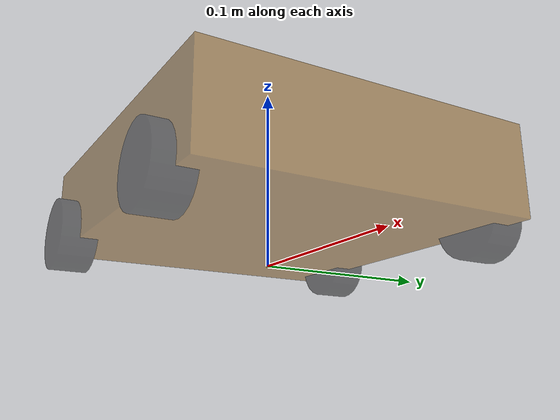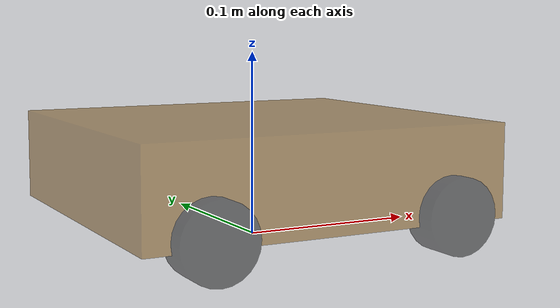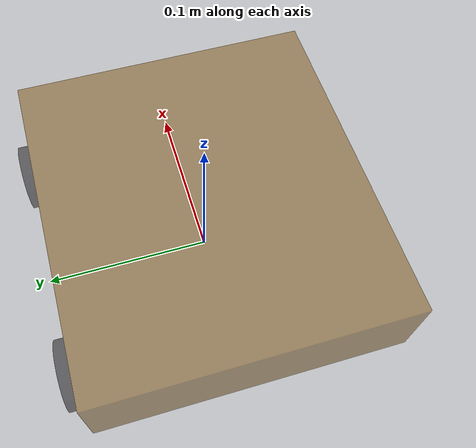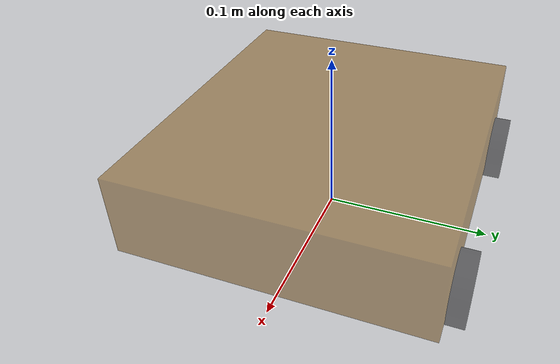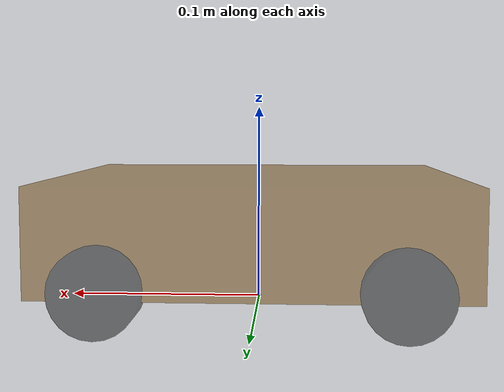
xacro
<robot xmlns:xacro="http://www.ros.org/wiki/xacro" name="mycar">
  <xacro:include filename="chassis.xacro" />
  <xacro:chassis foobar="simple" />

  <!-- ros_control plugin -->
  <gazebo>
    <plugin name="rm_ros_control" filename="librm_robot_hw_sim.so">
      <robotNamespace>/</robotNamespace>
      <robotSimType>rm_gazebo/RmRobotHWSim</robotSimType>
    </plugin>
  </gazebo>

</robot>

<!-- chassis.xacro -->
<robot name="mycar"
    xmlns:xacro="http://www.ros.org/wiki/xacro">
    <xacro:include filename="inertial.xacro" />
    <xacro:include filename="wheel.xacro" />
    <xacro:property name="base_length" value="0.2" />
    <xacro:property name="base_width" value="0.18" />
    <xacro:property name="base_height" value="0.05" />
    <xacro:property name="base_mass" value="2" />
    <xacro:property name="lidi" value="0.015" />
    <xacro:macro name="chassis" params="foobar">
        <xacro:property name="footprint_radius" value="0.001" />
        <link name="base_footprint">
            <visual>
                <geometry>
                    <sphere radius="${footprint_radius}" />
                </geometry>
            </visual>
        </link>
        <link name="base_link">
            <visual>
                <geometry>
                    <box size="${base_length} ${base_width} ${base_height}" />
                </geometry>
                <origin xyz="0 0 0" rpy="0 0 0" />
                <material name="yellow">
                    <color rgba="0.5 0.3 0.0 0.5" />
                </material>
            </visual>
            <collision>
                <geometry>
                    <box size="${base_length} ${base_width} ${base_height}" />
                </geometry>
                <origin xyz="0 0 0" rpy="0 0 0" />
            </collision>
            <xacro:box_inertial_matrix m="${base_mass}" l="${base_length}" w="${base_width}"
                h="${base_height}" />
        </link>
        <gazebo reference="base_link">
            <material>
                Gazebo/Yellow
            </material>
        </gazebo>
        <joint name="base_link2base_footprint" type="fixed">
            <parent link="base_footprint" />
            <child link="base_link" />
            <origin xyz="0 0 ${base_height/2+lidi}" rpy="0 0 0" />
            <axis xyz="0 1 0" />
        </joint>
        <xacro:property name="wheel_offset_z" value="${-(base_height/2+lidi-wheel_radius)}" />
        <xacro:wheel_func prefix="left_front" connected_to="base_link"
            wheel_x_offset="${base_length/3}" wheel_y_offset="${base_width/2}"
            wheel_z_offset="${wheel_offset_z}" />
        <xacro:wheel_func prefix="right_front" connected_to="base_link"
            wheel_x_offset="${base_length/3}" wheel_y_offset="${-base_width/2}"
            wheel_z_offset="${wheel_offset_z}" />
        <xacro:wheel_func prefix="left_back" connected_to="base_link"
            wheel_x_offset="${-base_length/3}" wheel_y_offset="${base_width/2}"
            wheel_z_offset="${wheel_offset_z}" />
        <xacro:wheel_func prefix="right_back" connected_to="base_link"
            wheel_x_offset="${-base_length/3}" wheel_y_offset="${-base_width/2}"
            wheel_z_offset="${wheel_offset_z}" />
        <xacro:wheel_transmission prefix="left_front" mechanical_reduction="1" />
        <xacro:wheel_transmission prefix="right_front" mechanical_reduction="-1" />
        <xacro:wheel_transmission prefix="left_back" mechanical_reduction="1" />
        <xacro:wheel_transmission prefix="right_back" mechanical_reduction="-1" />
    </xacro:macro>
</robot>

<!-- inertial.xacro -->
<robot name="mycar" xmlns:xacro="http://www.ros.org/wiki/xacro">
    <!-- Macro for inertia matrix -->
    <xacro:macro name="sphere_inertial_matrix" params="m r">
        <inertial>
            <mass value="${m}" />
            <inertia ixx="${2*m*r*r/5}" ixy="0" ixz="0" iyy="${2*m*r*r/5}" iyz="0" izz="${2*m*r*r/5}" />
        </inertial>
    </xacro:macro>
    <xacro:macro name="cylinder_inertial_matrix" params="m r h">
        <inertial>
            <mass value="${m}" />
            <inertia ixx="${m*(3*r*r+h*h)/12}" ixy = "0" ixz = "0" iyy="${m*(3*r*r+h*h)/12}" iyz = "0" izz="${m*r*r/2}" />
        </inertial>
    </xacro:macro>
    <xacro:macro name="box_inertial_matrix" params="m l w h">
        <inertial>
            <mass value="${m}" />
            <inertia ixx="${m*(h*h + l*l)/12}" ixy = "0" ixz = "0" iyy="${m*(w*w + l*l)/12}" iyz= "0" izz="${m*(w*w + h*h)/12}" />
        </inertial>
    </xacro:macro>
</robot>

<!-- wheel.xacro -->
<robot xmlns:xacro="http://www.ros.org/wiki/xacro" name="wheel">
    <xacro:include filename="inertial.xacro" />
    <xacro:property name="PI" value="3.1415927" />
    <xacro:property name="wheel_radius" value="0.02" />
    <xacro:property name="wheel_length" value="0.02" />
    <xacro:property name="wheel_mass" value="0.05" />
    <xacro:macro name="wheel_func"
        params="prefix connected_to wheel_x_offset wheel_y_offset wheel_z_offset">
        <!--  link  -->
        <link name="${prefix}_wheel">
            <visual>
                <geometry>
                    <cylinder radius="${wheel_radius}" length="${wheel_length}" />
                </geometry>
                <origin xyz="0 0 0" rpy="${PI /2} 0 0" />
                <material name="red">
                    <color rgba="0 0 0 0.5" />
                </material>
            </visual>
            <collision>
                <geometry>
                    <cylinder radius="${wheel_radius}" length="${wheel_length}" />
                </geometry>
                <origin xyz="0 0 0" rpy="${PI /2} 0 0" />
            </collision>
            <xacro:cylinder_inertial_matrix m="${wheel_mass}" r="${wheel_radius}"
                h="${wheel_length}" />
        </link>
        <!--  joint  -->
        <joint name="${prefix}_wheel_joint" type="continuous">
            <axis xyz="0 1 0" />
            <origin xyz="${wheel_x_offset} ${wheel_y_offset} ${wheel_offset_z}" rpy="0 0 0" />
            <!--      limit not work while type="continuous"-->
            <parent link="${connected_to}" />
            <child link="${prefix}_wheel" />
        </joint>
        <gazebo reference="${prefix}_wheel">
            <material>
                Gazebo/Red
            </material>
        </gazebo>
    </xacro:macro>
    <xacro:macro name="wheel_transmission" params="prefix mechanical_reduction">
        <transmission name="${prefix}_wheel_trans">
            <type>transmission_interface/SimpleTransmission</type>
            <actuator name="${prefix}_wheel_motor">
                <hardwareInterface>hardware_interface/EffortJointInterface</hardwareInterface>
                <mechanicalReduction>${mechanical_reduction}</mechanicalReduction>
            </actuator>
            <joint name="${prefix}_wheel_joint">
                <hardwareInterface>hardware_interface/EffortJointInterface</hardwareInterface>
            </joint>
        </transmission>
    </xacro:macro>
</robot>
